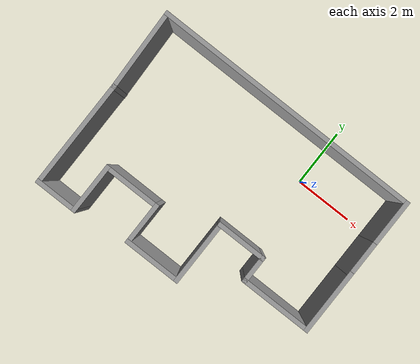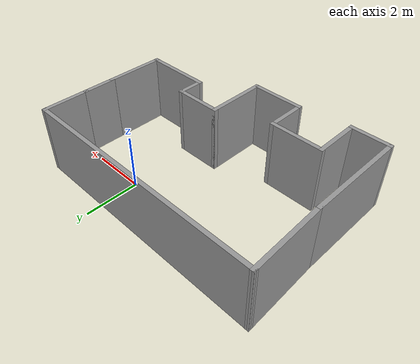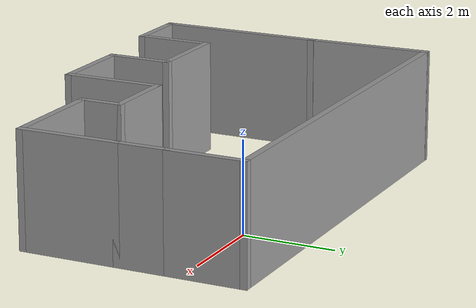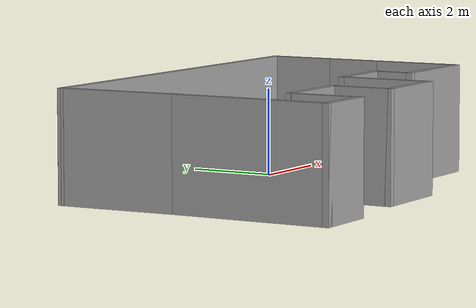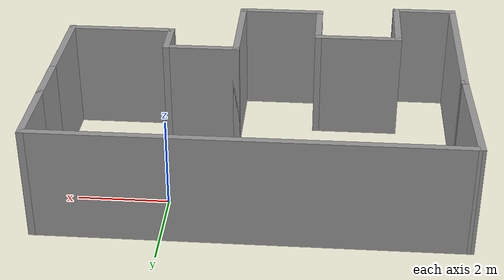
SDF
<?xml version='1.0'?>
<sdf version='1.7'>
  <model name='room'>
    <pose>-1.86136 -1.79864 0 0 -0 0</pose>
    <link name='Wall_10'>
      <collision name='Wall_10_Collision'>
        <geometry>
          <box>
            <size>1.75 0.15 2.5</size>
          </box>
        </geometry>
        <pose>0 0 1.25 0 -0 0</pose>
      </collision>
      <visual name='Wall_10_Visual'>
        <pose>0 0 1.25 0 -0 0</pose>
        <geometry>
          <box>
            <size>1.75 0.15 2.5</size>
          </box>
        </geometry>
        <material>
          <script>
            <uri>file://media/materials/scripts/gazebo.material</uri>
            <name>Gazebo/Grey</name>
          </script>
          <ambient>1 1 1 1</ambient>
        </material>
        <meta>
          <layer>0</layer>
        </meta>
      </visual>
      <pose>-3.09864 -2.35136 0 0 -0 -1.5708</pose>
    </link>
    <link name='Wall_11'>
      <collision name='Wall_11_Collision'>
        <geometry>
          <box>
            <size>1.5 0.15 2.5</size>
          </box>
        </geometry>
        <pose>0 0 1.25 0 -0 0</pose>
      </collision>
      <visual name='Wall_11_Visual'>
        <pose>0 0 1.25 0 -0 0</pose>
        <geometry>
          <box>
            <size>1.5 0.15 2.5</size>
          </box>
        </geometry>
        <material>
          <script>
            <uri>file://media/materials/scripts/gazebo.material</uri>
            <name>Gazebo/Grey</name>
          </script>
          <ambient>1 1 1 1</ambient>
        </material>
        <meta>
          <layer>0</layer>
        </meta>
      </visual>
      <pose>-3.77364 -3.15136 0 0 -0 3.14159</pose>
    </link>
    <link name='Wall_12'>
      <collision name='Wall_12_Collision'>
        <geometry>
          <box>
            <size>3.75 0.15 2.5</size>
          </box>
        </geometry>
        <pose>0 0 1.25 0 -0 0</pose>
      </collision>
      <visual name='Wall_12_Visual'>
        <pose>0 0 1.25 0 -0 0</pose>
        <geometry>
          <box>
            <size>3.75 0.15 2.5</size>
          </box>
        </geometry>
        <material>
          <script>
            <uri>file://media/materials/scripts/gazebo.material</uri>
            <name>Gazebo/Grey</name>
          </script>
          <ambient>1 1 1 1</ambient>
        </material>
        <meta>
          <layer>0</layer>
        </meta>
      </visual>
      <pose>-4.44864 -1.35136 0 0 -0 1.5708</pose>
    </link>
    <link name='Wall_2'>
      <collision name='Wall_2_Collision'>
        <geometry>
          <box>
            <size>2.25 0.15 2.5</size>
          </box>
        </geometry>
        <pose>0 0 1.25 0 -0 0</pose>
      </collision>
      <visual name='Wall_2_Visual'>
        <pose>0 0 1.25 0 -0 0</pose>
        <geometry>
          <box>
            <size>2.25 0.15 2.5</size>
          </box>
        </geometry>
        <material>
          <script>
            <uri>file://media/materials/scripts/gazebo.material</uri>
            <name>Gazebo/Grey</name>
          </script>
          <ambient>1 1 1 1</ambient>
        </material>
        <meta>
          <layer>0</layer>
        </meta>
      </visual>
      <pose>4.55136 -0.601362 0 0 -0 -1.5708</pose>
    </link>
    <link name='Wall_3'>
      <collision name='Wall_3_Collision'>
        <geometry>
          <box>
            <size>2.5 0.15 2.5</size>
          </box>
        </geometry>
        <pose>0 0 1.25 0 -0 0</pose>
      </collision>
      <visual name='Wall_3_Visual'>
        <pose>0 0 1.25 0 -0 0</pose>
        <geometry>
          <box>
            <size>2.5 0.15 2.5</size>
          </box>
        </geometry>
        <material>
          <script>
            <uri>file://media/materials/scripts/gazebo.material</uri>
            <name>Gazebo/Grey</name>
          </script>
          <ambient>1 1 1 1</ambient>
        </material>
        <meta>
          <layer>0</layer>
        </meta>
      </visual>
      <pose>3.37636 -1.65136 0 0 -0 3.14159</pose>
    </link>
    <link name='Wall_4'>
      <collision name='Wall_4_Collision'>
        <geometry>
          <box>
            <size>1 0.15 2.5</size>
          </box>
        </geometry>
        <pose>0 0 1.25 0 -0 0</pose>
      </collision>
      <visual name='Wall_4_Visual'>
        <pose>0 0 1.25 0 -0 0</pose>
        <geometry>
          <box>
            <size>1 0.15 2.5</size>
          </box>
        </geometry>
        <material>
          <script>
            <uri>file://media/materials/scripts/gazebo.material</uri>
            <name>Gazebo/Grey</name>
          </script>
          <ambient>1 1 1 1</ambient>
        </material>
        <meta>
          <layer>0</layer>
        </meta>
      </visual>
      <pose>2.20136 -1.22636 0 0 -0 1.5708</pose>
    </link>
    <link name='Wall_47'>
      <collision name='Wall_47_Collision'>
        <geometry>
          <box>
            <size>1.25 0.15 2.5</size>
          </box>
        </geometry>
        <pose>0 0 1.25 0 -0 0</pose>
      </collision>
      <visual name='Wall_47_Visual'>
        <pose>0 0 1.25 0 -0 0</pose>
        <geometry>
          <box>
            <size>1.25 0.15 2.5</size>
          </box>
        </geometry>
        <material>
          <script>
            <uri>file://media/materials/scripts/gazebo.material</uri>
            <name>Gazebo/Grey</name>
          </script>
          <ambient>1 1 1 1</ambient>
        </material>
        <meta>
          <layer>0</layer>
        </meta>
      </visual>
      <pose>4.55136 0.998638 0 0 -0 1.5708</pose>
    </link>
    <link name='Wall_5'>
      <collision name='Wall_5_Collision'>
        <geometry>
          <box>
            <size>1.75 0.15 2.5</size>
          </box>
        </geometry>
        <pose>0 0 1.25 0 -0 0</pose>
      </collision>
      <visual name='Wall_5_Visual'>
        <pose>0 0 1.25 0 -0 0</pose>
        <geometry>
          <box>
            <size>1.75 0.15 2.5</size>
          </box>
        </geometry>
        <material>
          <script>
            <uri>file://media/materials/scripts/gazebo.material</uri>
            <name>Gazebo/Grey</name>
          </script>
          <ambient>1 1 1 1</ambient>
        </material>
        <meta>
          <layer>0</layer>
        </meta>
      </visual>
      <pose>1.40136 -0.801362 0 0 -0 3.14159</pose>
    </link>
    <link name='Wall_50'>
      <collision name='Wall_50_Collision'>
        <geometry>
          <box>
            <size>1.75 0.15 2.5</size>
          </box>
        </geometry>
        <pose>0 0 1.25 0 -0 0</pose>
      </collision>
      <visual name='Wall_50_Visual'>
        <pose>0 0 1.25 0 -0 0</pose>
        <geometry>
          <box>
            <size>1.75 0.15 2.5</size>
          </box>
        </geometry>
        <material>
          <script>
            <uri>file://media/materials/scripts/gazebo.material</uri>
            <name>Gazebo/Grey</name>
          </script>
          <ambient>1 1 1 1</ambient>
        </material>
        <meta>
          <layer>0</layer>
        </meta>
      </visual>
      <pose>4.55136 2.34864 0 0 -0 1.5708</pose>
    </link>
    <link name='Wall_51'>
      <collision name='Wall_51_Collision'>
        <geometry>
          <box>
            <size>9.25 0.15 2.5</size>
          </box>
        </geometry>
        <pose>0 0 1.25 0 -0 0</pose>
      </collision>
      <visual name='Wall_51_Visual'>
        <pose>0 0 1.25 0 -0 0</pose>
        <geometry>
          <box>
            <size>9.25 0.15 2.5</size>
          </box>
        </geometry>
        <material>
          <script>
            <uri>file://media/materials/scripts/gazebo.material</uri>
            <name>Gazebo/Grey</name>
          </script>
          <ambient>1 1 1 1</ambient>
        </material>
        <meta>
          <layer>0</layer>
        </meta>
      </visual>
      <pose>0.001362 3.14864 0 0 -0 3.14159</pose>
    </link>
    <link name='Wall_52'>
      <collision name='Wall_52_Collision'>
        <geometry>
          <box>
            <size>2.85185 0.15 2.5</size>
          </box>
        </geometry>
        <pose>0 0 1.25 0 -0 0</pose>
      </collision>
      <visual name='Wall_52_Visual'>
        <pose>0 0 1.25 0 -0 0</pose>
        <geometry>
          <box>
            <size>2.85185 0.15 2.5</size>
          </box>
        </geometry>
        <material>
          <script>
            <uri>file://media/materials/scripts/gazebo.material</uri>
            <name>Gazebo/Grey</name>
          </script>
          <ambient>1 1 1 1</ambient>
        </material>
        <meta>
          <layer>0</layer>
        </meta>
      </visual>
      <pose>-4.49864 1.79864 0 0 -0 -1.53378</pose>
    </link>
    <link name='Wall_53'>
      <collision name='Wall_53_Collision'>
        <geometry>
          <box>
            <size>0.16 0.15 2.5</size>
          </box>
        </geometry>
        <pose>0 0 1.25 0 -0 0</pose>
      </collision>
      <visual name='Wall_53_Visual'>
        <pose>0 0 1.25 0 -0 0</pose>
        <geometry>
          <box>
            <size>0.16 0.15 2.5</size>
          </box>
        </geometry>
        <material>
          <script>
            <uri>file://media/materials/scripts/gazebo.material</uri>
            <name>Gazebo/Grey</name>
          </script>
          <ambient>1 1 1 1</ambient>
        </material>
        <meta>
          <layer>0</layer>
        </meta>
      </visual>
      <pose>-4.44364 0.448638 0 0 -0 0</pose>
    </link>
    <link name='Wall_6'>
      <collision name='Wall_6_Collision'>
        <geometry>
          <box>
            <size>2.25 0.15 2.5</size>
          </box>
        </geometry>
        <pose>0 0 1.25 0 -0 0</pose>
      </collision>
      <visual name='Wall_6_Visual'>
        <pose>0 0 1.25 0 -0 0</pose>
        <geometry>
          <box>
            <size>2.25 0.15 2.5</size>
          </box>
        </geometry>
        <material>
          <script>
            <uri>file://media/materials/scripts/gazebo.material</uri>
            <name>Gazebo/Grey</name>
          </script>
          <ambient>1 1 1 1</ambient>
        </material>
        <meta>
          <layer>0</layer>
        </meta>
      </visual>
      <pose>0.601362 -1.85136 0 0 -0 -1.5708</pose>
    </link>
    <link name='Wall_7'>
      <collision name='Wall_7_Collision'>
        <geometry>
          <box>
            <size>2 0.15 2.5</size>
          </box>
        </geometry>
        <pose>0 0 1.25 0 -0 0</pose>
      </collision>
      <visual name='Wall_7_Visual'>
        <pose>0 0 1.25 0 -0 0</pose>
        <geometry>
          <box>
            <size>2 0.15 2.5</size>
          </box>
        </geometry>
        <material>
          <script>
            <uri>file://media/materials/scripts/gazebo.material</uri>
            <name>Gazebo/Grey</name>
          </script>
          <ambient>1 1 1 1</ambient>
        </material>
        <meta>
          <layer>0</layer>
        </meta>
      </visual>
      <pose>-0.323638 -2.90136 0 0 -0 3.14159</pose>
    </link>
    <link name='Wall_8'>
      <collision name='Wall_8_Collision'>
        <geometry>
          <box>
            <size>1.5 0.15 2.5</size>
          </box>
        </geometry>
        <pose>0 0 1.25 0 -0 0</pose>
      </collision>
      <visual name='Wall_8_Visual'>
        <pose>0 0 1.25 0 -0 0</pose>
        <geometry>
          <box>
            <size>1.5 0.15 2.5</size>
          </box>
        </geometry>
        <material>
          <script>
            <uri>file://media/materials/scripts/gazebo.material</uri>
            <name>Gazebo/Grey</name>
          </script>
          <ambient>1 1 1 1</ambient>
        </material>
        <meta>
          <layer>0</layer>
        </meta>
      </visual>
      <pose>-1.24864 -2.22636 0 0 -0 1.5708</pose>
    </link>
    <link name='Wall_9'>
      <collision name='Wall_9_Collision'>
        <geometry>
          <box>
            <size>2 0.15 2.5</size>
          </box>
        </geometry>
        <pose>0 0 1.25 0 -0 0</pose>
      </collision>
      <visual name='Wall_9_Visual'>
        <pose>0 0 1.25 0 -0 0</pose>
        <geometry>
          <box>
            <size>2 0.15 2.5</size>
          </box>
        </geometry>
        <material>
          <script>
            <uri>file://media/materials/scripts/gazebo.material</uri>
            <name>Gazebo/Grey</name>
          </script>
          <ambient>1 1 1 1</ambient>
        </material>
        <meta>
          <layer>0</layer>
        </meta>
      </visual>
      <pose>-2.17364 -1.55136 0 0 -0 3.14159</pose>
    </link>
    <static>1</static>
  </model>
</sdf>
